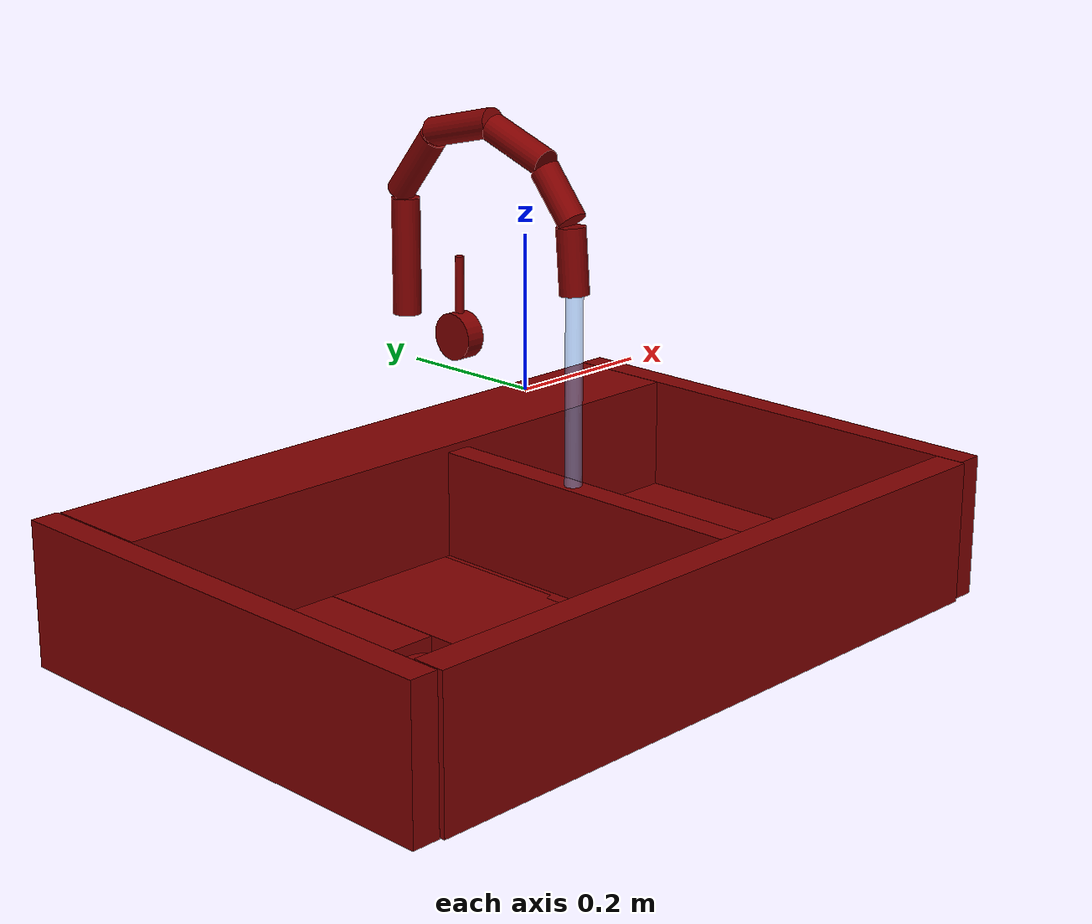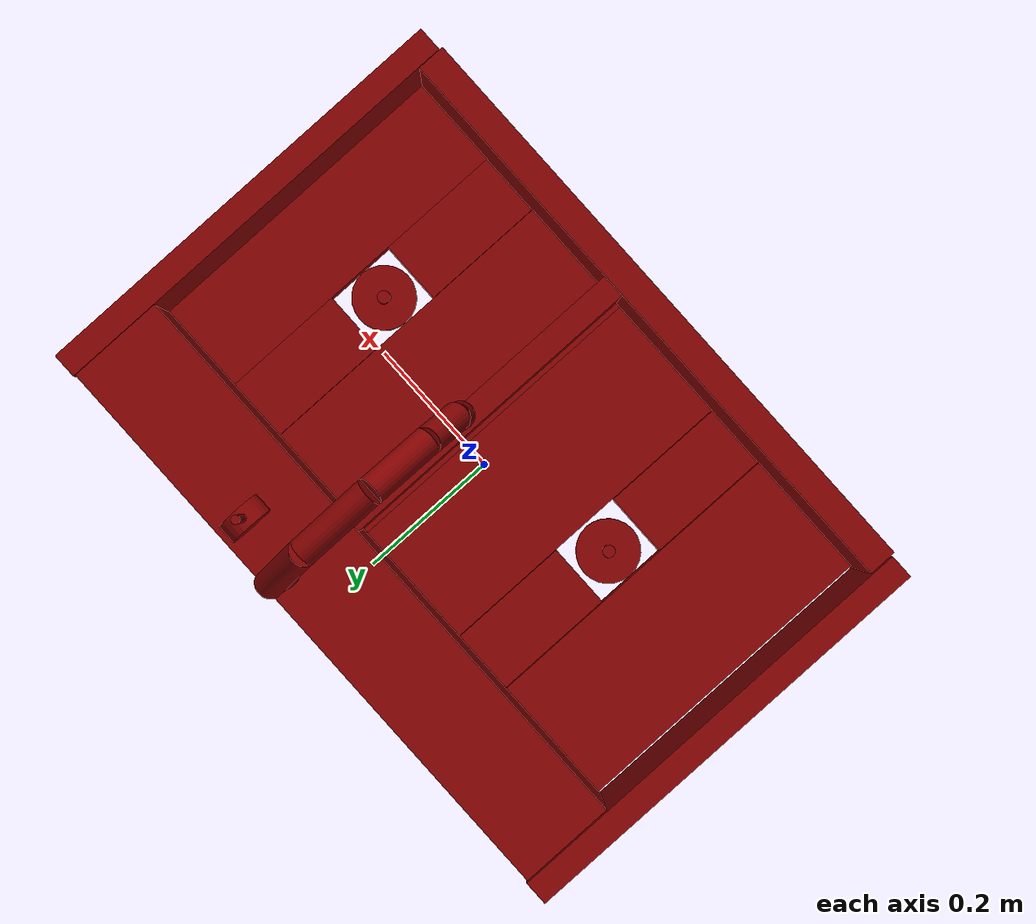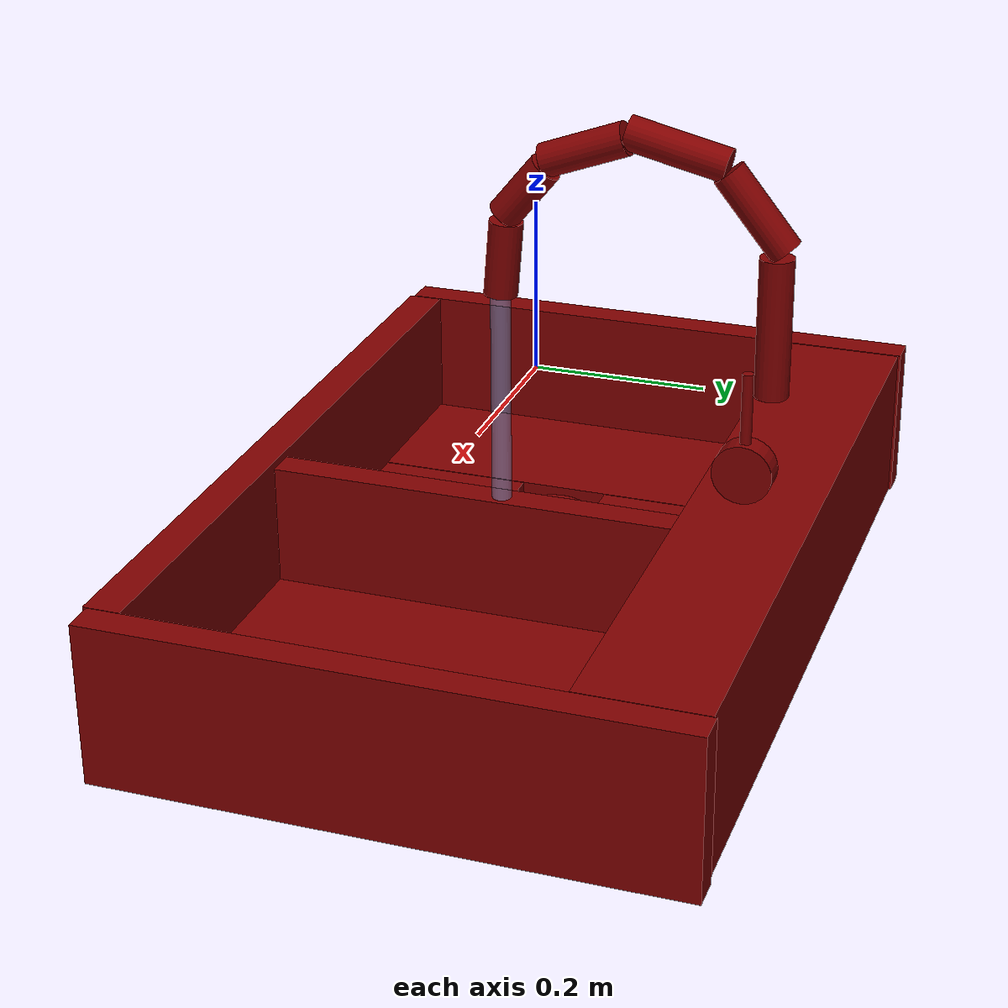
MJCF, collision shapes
<?xml version='1.0' encoding='UTF-8'?>
<mujoco model="model">
  <option timestep="0.002" gravity="0.0 0.0 -9.81"/>
  <compiler angle="radian"/>
  <asset>
    <mesh file="visuals/handle.obj" name="handle_vis"/>
    <mesh file="visuals/Body001.obj" name="Body001_vis"/>
    <mesh file="visuals/Funnel001.obj" name="Funnel001_vis"/>
    <mesh file="visuals/Funnel002.obj" name="Funnel002_vis"/>
    <mesh file="visuals/spout.obj" name="spout_vis"/>
    <texture file="visuals/T_BC001.png" name="Body001_material" type="2d"/>
    <material name="Body001_material" rgba="1 1 1 1.0" texture="Body001_material" shininess="0.1" specular="2"/>
    <texture file="visuals/T_BC001.png" name="handle_material" type="2d"/>
    <material name="handle_material" rgba="1 1 1 1.0" texture="handle_material" shininess="0.4" specular="2"/>
    <texture file="visuals/T_BC001.png" name="Funnel001_material" type="2d"/>
    <material name="Funnel001_material" rgba="1 1 1 1.0" texture="Funnel001_material" shininess="0.1" specular="4"/>
    <texture file="visuals/T_BC001.png" name="Funnel002_material" type="2d"/>
    <material name="Funnel002_material" rgba="1 1 1 1.0" texture="Funnel002_material" shininess="0.1" specular="4"/>
    <texture file="visuals/T_BC001.png" name="spout_material" type="2d"/>
    <material name="spout_material" rgba="1 1 1 1.0" texture="spout_material" shininess="0.1" specular="1"/>
  </asset>
  <default>
    <default class="visual">
      <geom conaffinity="0" contype="0" group="1" type="mesh"/>
    </default>
    <default class="collision">
      <geom group="0" rgba="0.5 0 0 0.5"/>
    </default>
    <default class="spawn">
      <geom group="0" rgba="1 1 1 0.5" contype="0" conaffinity="0"/>
      <site group="0" rgba="1 1 1 0.5"/>
    </default>
    <default class="region">
      <geom group="1" conaffinity="0" contype="0" rgba="0 1 0 0"/>
    </default>
  </default>
  <worldbody>
    <body>
      <body name="object">
        <geom mesh="Body001_vis" type="mesh" solimp="0.998 0.998 0.001" solref="0.001 1" friction="0.95 0.3 0.1" class="visual" material="Body001_material"/>
        <geom class="collision" type="box" pos="-0.495080 0.002671 -0.228444" size="0.01909610442817211 0.34323060512542725 0.09792335331439972" quat="1.0 0.0 0.0 0.0"/>
        <geom class="collision" type="box" pos="0.494992 0.002671 -0.228444" size="0.019184201955795288 0.343230664730072 0.09792336821556091" quat="1.0 0.0 0.0 0.0"/>
        <geom class="collision" type="box" pos="0.066683 -0.052302 -0.233237" size="0.01861185021698475 0.25608429312705994 0.0931307002902031" quat="1.0 0.0 0.0 0.0"/>
        <geom class="collision" type="box" pos="0.000573 0.268425 -0.228444" size="0.4744337499141693 0.07427951693534851 0.0979233905673027" quat="1.0 0.0 0.0 0.0"/>
        <geom class="collision" type="box" pos="0.000573 -0.324044 -0.228444" size="0.4744338095188141 0.02185874432325363 0.0979233980178833" quat="1.0 0.0 0.0 0.0"/>
        <geom class="collision" type="box" pos="-0.367315 -0.052302 -0.307571" size="0.10149960964918137 0.25608471035957336 0.018796658143401146" quat="1.0 0.0 0.0 0.0"/>
        <geom class="collision" type="box" pos="-0.061074 -0.052302 -0.307571" size="0.10149960964918137 0.25608471035957336 0.01879665069282055" quat="1.0 0.0 0.0 0.0"/>
        <geom class="collision" type="box" pos="0.130572 -0.052302 -0.307571" size="0.10149960964918137 0.25608471035957336 0.018796661868691444" quat="1.0 0.0 0.0 0.0"/>
        <geom class="collision" type="box" pos="0.408901 -0.052302 -0.307571" size="0.07677695900201797 0.25608471035957336 0.018796660006046295" quat="1.0 0.0 0.0 0.0"/>
        <geom class="collision" type="box" pos="-0.214016 0.101381 -0.307571" size="0.050547897815704346 0.09694131463766098 0.018796652555465698" quat="1.0 0.0 0.0 0.0"/>
        <geom class="collision" type="box" pos="-0.214016 -0.204555 -0.307571" size="0.050547897815704346 0.09694131463766098 0.01879665069282055" quat="1.0 0.0 0.0 0.0"/>
        <geom class="collision" type="box" pos="0.283188 -0.204555 -0.307571" size="0.050547897815704346 0.09694131463766098 0.0187966451048851" quat="1.0 0.0 0.0 0.0"/>
        <geom class="collision" type="box" pos="0.283188 0.100093 -0.307571" size="0.050547897815704346 0.09694131463766098 0.018796643242239952" quat="1.0 0.0 0.0 0.0"/>
        <body name="handle">
          <joint axis="1.0 0.0 0.0" pos="0.153050 0.289294 -0.015799" limited="true" name="handle_temp_joint" type="hinge" range="-0.7853981633974483 0.7853981633974483" damping="1" frictionloss="1" armature=".01" stiffness="0.05"/>
          <joint axis="0.0 1.0 0.0" pos="0.153050 0.289294 -0.015799" limited="true" name="handle_joint" type="hinge" range="0.0 0.3490658503988659" damping="1" frictionloss="1" armature=".01" stiffness="0.05"/>
          <geom mesh="handle_vis" type="mesh" solimp="0.998 0.998 0.001" solref="0.001 1" friction="0.95 0.3 0.1" class="visual" material="handle_material"/>
          <geom class="collision" type="cylinder" pos="0.161692 0.289213 -0.015962" size="0.03340867534279823 0.014485578052699566" quat="0.7071068286895752 -0.0 0.7071067690849304 0.0"/>
          <geom class="collision" type="cylinder" pos="0.162969 0.289251 0.053592" size="0.006227125413715839 0.04342131316661835" quat="1.0 0.0 0.0 0.0"/>
        </body>
        <body name="Funnel001">
          <joint axis="0.0 0.0 1.0" pos="-0.215447 -0.051217 -0.295605" limited="true" name="Funnel001_joint" range="0.0 0.1" type="slide" damping="1" frictionloss="1" armature=".01" stiffness="0.05"/>
          <geom mesh="Funnel001_vis" type="mesh" solimp="0.998 0.998 0.001" solref="0.001 1" friction="0.95 0.3 0.1" class="visual" material="Funnel001_material"/>
          <geom class="collision" type="cylinder" pos="-0.215912 -0.051729 -0.304772" size="0.04812832549214363 0.0062426915392279625" quat="1.0 0.0 0.0 0.0"/>
          <geom class="collision" type="cylinder" pos="-0.215912 -0.051729 -0.290755" size="0.00939252134412527 0.006242691073566675" quat="1.0 0.0 0.0 0.0"/>
        </body>
        <body name="Funnel002">
          <joint axis="0.0 0.0 1.0" pos="0.281548 -0.054275 -0.295605" limited="true" name="Funnel002_joint" range="0.0 0.1" type="slide" damping="1" frictionloss="1" armature=".01" stiffness="0.05"/>
          <geom mesh="Funnel002_vis" type="mesh" solimp="0.998 0.998 0.001" solref="0.001 1" friction="0.95 0.3 0.1" class="visual" material="Funnel002_material"/>
          <geom class="collision" type="cylinder" pos="0.281772 -0.054214 -0.304791" size="0.04812832549214363 0.0062426915392279625" quat="1.0 0.0 0.0 0.0"/>
          <geom class="collision" type="cylinder" pos="0.281772 -0.054214 -0.291142" size="0.009885367937386036 0.006242691073566675" quat="1.0 0.0 0.0 0.0"/>
        </body>
        <body name="spout">
          <joint axis="0.0 0.0 1.0" pos="0.067555 0.293289 0.163738" limited="true" name="spout_joint" range="-0.7853981633974483 0.7853981633974483" type="hinge" damping="1" frictionloss="1" armature=".01" stiffness="0.05"/>
          <site type="cylinder" rgba="0.5 0.75 1 0.5" size="0.01151744183152914 0.21220138669013977" pos="0.067494 -0.020068 -0.097071" name="water"/>
          <geom mesh="spout_vis" type="mesh" solimp="0.998 0.998 0.001" solref="0.001 1" friction="0.95 0.3 0.1" class="visual" material="spout_material"/>
          <geom class="collision" type="cylinder" pos="0.068510 0.293824 0.113175" size="0.019380977377295494 0.08024422079324722" quat="1.0 0.0 0.0 0.0"/>
          <geom class="collision" type="cylinder" pos="0.068510 0.270080 0.241485" size="0.019380977377295494 0.05237458273768425" quat="0.94241863489151 0.33443546295166016 -7.425959024402132e-17 -1.0411755019580105e-24"/>
          <geom class="collision" type="cylinder" pos="0.068510 0.009594 0.237008" size="0.019380977377295494 0.03836783766746521" quat="0.94241863489151 -0.33443546295166016 -7.425958362657642e-17 2.1058400473437913e-23"/>
          <geom class="collision" type="cylinder" pos="0.068510 -0.015613 0.156993" size="0.019380979239940643 0.04354899376630783" quat="0.9991522431373596 -0.04116756469011307 9.141035637341825e-18 -9.257695888667683e-25"/>
          <geom class="collision" type="cylinder" pos="0.068510 0.181679 0.302015" size="0.019380977377295494 0.05733475089073181" quat="0.7834377288818359 0.6214703321456909 -1.740260556822788e-16 3.604969907408587e-17"/>
          <geom class="collision" type="cylinder" pos="0.068510 0.078115 0.290938" size="0.019380977377295494 0.049684420228004456" quat="0.5714645385742188 0.8206267356872559 -1.2698036348411727e-16 -5.526257353101829e-17"/>
        </body>
        <geom class="region" name="reg_basin_left" type="box" pos="-0.21534050000000002 -0.052341499999999985 -0.22241850000000002" size="0.2672205 0.2571445 0.08102850000000002"/>
        <geom class="region" name="reg_basin_right" type="box" pos="0.2815585 -0.054326999999999986 -0.22241850000000002" size="0.2001755 0.255159 0.08102850000000002"/>
        <geom class="region" name="reg_main" type="box" pos="0.0 0.0 -0.2284445" size="0.514176 0.345902 0.0979235"/>
      </body>
    </body>
  </worldbody>
  <actuator>
    <motor name="handle_joint_actuator" joint="handle_joint" gear="10"/>
    <motor name="Funnel001_joint_actuator" joint="Funnel001_joint" gear="10"/>
    <motor name="Funnel002_joint_actuator" joint="Funnel002_joint" gear="10"/>
    <motor name="spout_joint_actuator" joint="spout_joint" gear="10"/>
  </actuator>
</mujoco>
